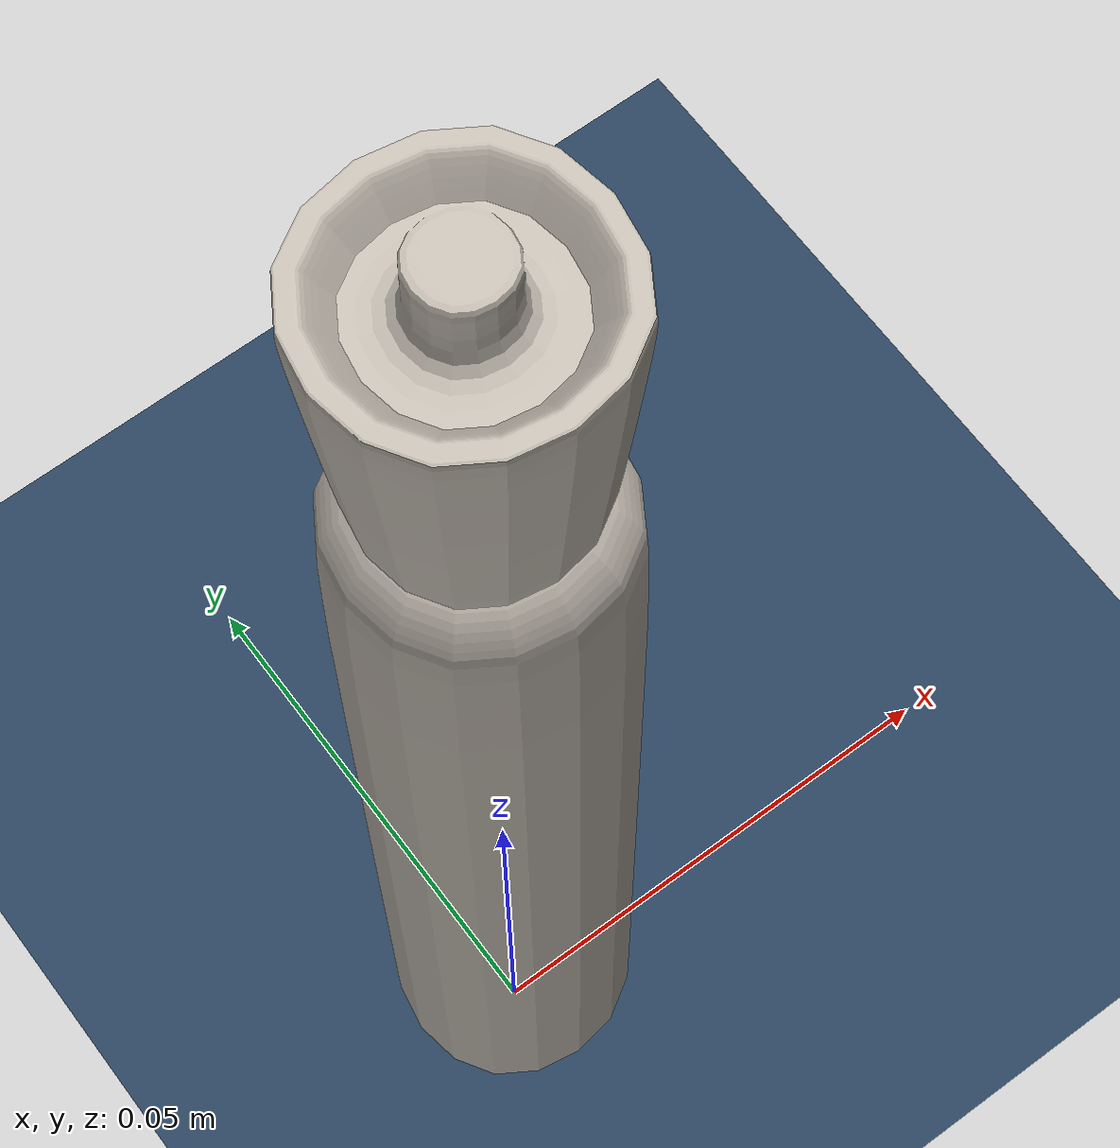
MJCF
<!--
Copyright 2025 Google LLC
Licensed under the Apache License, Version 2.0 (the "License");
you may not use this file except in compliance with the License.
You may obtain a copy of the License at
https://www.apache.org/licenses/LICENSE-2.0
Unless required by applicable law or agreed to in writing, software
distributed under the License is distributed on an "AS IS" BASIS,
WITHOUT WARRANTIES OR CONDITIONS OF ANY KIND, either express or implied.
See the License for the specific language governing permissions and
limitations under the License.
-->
<mujoco model="marker_scene">
  <include file="marker.xml"/>
  <include file="cap.xml"/>

  <option>
    <flag multiccd="enable"/>
  </option>

  <statistic center="0 0 0.1" extent="0.4" meansize="0.02"/>

  <visual>
    <headlight diffuse="0.6 0.6 0.6" ambient="0.3 0.3 0.3" specular="0 0 0"/>
    <rgba haze="0.15 0.25 0.35 1"/>
    <global azimuth="120" elevation="-10"/>
  </visual>

  <asset>
    <texture type="skybox" builtin="gradient" rgb1="0.3 0.5 0.7" rgb2="0 0 0" width="512" height="3072"/>
    <texture type="2d" name="groundplane" builtin="checker" mark="edge" rgb1="0.2 0.3 0.4" rgb2="0.1 0.2 0.3"
      markrgb="0.8 0.8 0.8" width="300" height="300"/>
    <material name="groundplane" texture="groundplane" texuniform="true" texrepeat="5 5" reflectance="0.2"/>
  </asset>

  <worldbody>
    <light pos="0 0 1.5" directional="true"/>
    <geom name="floor" size="0 0 0.05" type="plane" material="groundplane"/>
  </worldbody>
</mujoco>

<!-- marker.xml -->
<mujoco model="marker">
  <compiler assetdir="meshes" texturedir="materials"/>

  <asset>
    <texture type="2d" name="marker_texture" file="4k_textures/marker_4k_BaseColor.png"/>
    <material name="marker_texture" texture="marker_texture"/>

    <mesh file="marker.obj" scale = "1 1 1"/>
    <mesh file="marker_collision_001.obj" scale = "1 1 1"/>
    <mesh file="marker_collision_002.obj" scale = "1 1 1"/>
    <mesh file="marker_collision_003.obj" scale = "1 1 1"/>
    <mesh file="marker_collision_004.obj" scale = "1 1 1"/>
    <mesh file="marker_collision_005.obj" scale = "1 1 1"/>
    <mesh file="marker_collision_006.obj" scale = "1 1 1"/>
    <mesh file="marker_collision_007.obj" scale = "1 1 1"/>
    <mesh file="marker_collision_008.obj" scale = "1 1 1"/>
    <mesh file="marker_collision_009.obj" scale = "1 1 1"/>
    <mesh file="marker_collision_010.obj" scale = "1 1 1"/>
    <mesh file="marker_collision_011.obj" scale = "1 1 1"/>
    <mesh file="marker_collision_012.obj" scale = "1 1 1"/>
    <mesh file="marker_collision_013.obj" scale = "1 1 1"/>
    <mesh file="marker_collision_014.obj" scale = "1 1 1"/>
    <mesh file="marker_collision_015.obj" scale = "1 1 1"/>
    <mesh file="marker_collision_016.obj" scale = "1 1 1"/>
    <mesh file="marker_collision_high_friction_001.obj" scale = "1 1 1"/>
    <mesh file="marker_collision_high_friction_002.obj" scale = "1 1 1"/>
    <mesh file="marker_collision_high_friction_003.obj" scale = "1 1 1"/>
    <mesh file="marker_collision_high_friction_004.obj" scale = "1 1 1"/>
    <mesh file="marker_collision_high_friction_005.obj" scale = "1 1 1"/>
    <mesh file="marker_collision_high_friction_006.obj" scale = "1 1 1"/>
    <mesh file="marker_collision_high_friction_007.obj" scale = "1 1 1"/>
    <mesh file="marker_collision_high_friction_008.obj" scale = "1 1 1"/>
  </asset>

  <default>
    <default class="marker">
      <default class="visual_marker">
        <geom type="mesh" group="2" density="200" contype="0" conaffinity="0" material="marker_texture"/>
      </default>
      <default class="collision_marker">
        <geom type="mesh" group="3" density="0" solref=".004 1" friction="1.0 0.01 0.01" condim="6"/>
      </default>
      <default class="collision_marker_high_friction">
        <geom type="mesh" group="4" density="0" solref=".004 1" friction="0.5 0.01 0.01" solimp="0.99 0.99 0.01" condim="6"/>
      </default>
    </default>
  </default>

  <worldbody>
    <body childclass="marker" pos="0 0 0.01">
      <freejoint/>
      <geom class="visual_marker" mesh="marker" euler="0 90 90"/>
      <geom class="collision_marker" mesh="marker_collision_001" euler="0 90 90"/>
      <geom class="collision_marker" mesh="marker_collision_002" euler="0 90 90"/>
      <geom class="collision_marker" mesh="marker_collision_003" euler="0 90 90"/>
      <geom class="collision_marker" mesh="marker_collision_004" euler="0 90 90"/>
      <geom class="collision_marker" mesh="marker_collision_005" euler="0 90 90"/>
      <geom class="collision_marker" mesh="marker_collision_006" euler="0 90 90"/>
      <geom class="collision_marker" mesh="marker_collision_007" euler="0 90 90"/>
      <geom class="collision_marker" mesh="marker_collision_008" euler="0 90 90"/>
      <geom class="collision_marker" mesh="marker_collision_009" euler="0 90 90"/>
      <geom class="collision_marker" mesh="marker_collision_010" euler="0 90 90"/>
      <geom class="collision_marker" mesh="marker_collision_011" euler="0 90 90"/>
      <geom class="collision_marker" mesh="marker_collision_012" euler="0 90 90"/>
      <geom class="collision_marker" mesh="marker_collision_013" euler="0 90 90"/>
      <geom class="collision_marker" mesh="marker_collision_014" euler="0 90 90"/>
      <geom class="collision_marker" mesh="marker_collision_015" euler="0 90 90"/>
      <geom class="collision_marker" mesh="marker_collision_016" euler="0 90 90"/>
      <geom class="collision_marker_high_friction" mesh="marker_collision_high_friction_001" euler="0 90 90"/>
      <geom class="collision_marker_high_friction" mesh="marker_collision_high_friction_002" euler="0 90 90"/>
      <geom class="collision_marker_high_friction" mesh="marker_collision_high_friction_003" euler="0 90 90"/>
      <geom class="collision_marker_high_friction" mesh="marker_collision_high_friction_004" euler="0 90 90"/>
      <geom class="collision_marker_high_friction" mesh="marker_collision_high_friction_005" euler="0 90 90"/>
      <geom class="collision_marker_high_friction" mesh="marker_collision_high_friction_006" euler="0 90 90"/>
      <geom class="collision_marker_high_friction" mesh="marker_collision_high_friction_007" euler="0 90 90"/>
      <geom class="collision_marker_high_friction" mesh="marker_collision_high_friction_008" euler="0 90 90"/>
    </body>
  </worldbody>
</mujoco>

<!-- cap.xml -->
<mujoco model="cap">
  <compiler assetdir="meshes" texturedir="materials"/>

  <asset>
    <texture type="2d" name="cap_texture" file="4k_textures/marker_4k_BaseColor.png"/>
    <material name="cap_texture" texture="cap_texture"/>

    <mesh file="cap.obj" scale = "1 1 1"/>
    <mesh file="cap_collision_001.obj" scale = "1 1 1"/>
    <mesh file="cap_collision_002.obj" scale = "1 1 1"/>
    <mesh file="cap_collision_003.obj" scale = "1 1 1"/>
    <mesh file="cap_collision_004.obj" scale = "1 1 1"/>
    <mesh file="cap_collision_005.obj" scale = "1 1 1"/>
    <mesh file="cap_collision_006.obj" scale = "1 1 1"/>
    <mesh file="cap_collision_007.obj" scale = "1 1 1"/>
    <mesh file="cap_collision_008.obj" scale = "1 1 1"/>
    <mesh file="cap_collision_009.obj" scale = "1 1 1"/>
    <mesh file="cap_collision_high_friction_001.obj" scale = "1 1 1"/>
    <mesh file="cap_collision_high_friction_002.obj" scale = "1 1 1"/>
    <mesh file="cap_collision_high_friction_003.obj" scale = "1 1 1"/>
    <mesh file="cap_collision_high_friction_004.obj" scale = "1 1 1"/>
    <mesh file="cap_collision_high_friction_005.obj" scale = "1 1 1"/>
    <mesh file="cap_collision_high_friction_006.obj" scale = "1 1 1"/>
    <mesh file="cap_collision_high_friction_007.obj" scale = "1 1 1"/>
    <mesh file="cap_collision_high_friction_008.obj" scale = "1 1 1"/>
    <mesh file="cap_collision_high_friction_009.obj" scale = "1 1 1"/>
    <mesh file="cap_collision_high_friction_010.obj" scale = "1 1 1"/>
    <mesh file="cap_collision_high_friction_011.obj" scale = "1 1 1"/>
    <mesh file="cap_collision_high_friction_012.obj" scale = "1 1 1"/>
    <mesh file="cap_collision_high_friction_013.obj" scale = "1 1 1"/>
    <mesh file="cap_collision_high_friction_014.obj" scale = "1 1 1"/>
    <mesh file="cap_collision_high_friction_015.obj" scale = "1 1 1"/>
    <mesh file="cap_collision_high_friction_016.obj" scale = "1 1 1"/>

  </asset>

  <default>
    <default class="cap">
      <default class="visual_cap">
        <geom type="mesh" group="2" density="200" contype="0" conaffinity="0" material="cap_texture"/>
      </default>
      <default class="collision_cap_external">
        <geom type="mesh" group="3" density="0" solref=".004 1" friction="1.0 0.01 0.01" condim="6"/>
      </default>
      <default class="collision_cap_high_friction">
        <geom type="mesh" group="4" density="0" solref=".004 1" friction="0.5 0.01 0.01" condim="6" solimp="0.99 0.99 0.01"/>
      </default>
    </default>
  </default>

  <worldbody>
    <body childclass="cap" pos="0 0 0.01">
      <freejoint/>
      <geom class="visual_cap" mesh="cap" euler="0 90 90"/>
      <geom class="collision_cap_external" mesh="cap_collision_001" euler="0 90 90"/>
      <geom class="collision_cap_external" mesh="cap_collision_002" euler="0 90 90"/>
      <geom class="collision_cap_external" mesh="cap_collision_003" euler="0 90 90"/>
      <geom class="collision_cap_external" mesh="cap_collision_004" euler="0 90 90"/>
      <geom class="collision_cap_external" mesh="cap_collision_005" euler="0 90 90"/>
      <geom class="collision_cap_external" mesh="cap_collision_006" euler="0 90 90"/>
      <geom class="collision_cap_external" mesh="cap_collision_007" euler="0 90 90"/>
      <geom class="collision_cap_external" mesh="cap_collision_008" euler="0 90 90"/>
      <geom class="collision_cap_external" mesh="cap_collision_009" euler="0 90 90"/>
      <geom class="collision_cap_high_friction" mesh="cap_collision_high_friction_001" euler="0 90 90"/>
      <geom class="collision_cap_high_friction" mesh="cap_collision_high_friction_002" euler="0 90 90"/>
      <geom class="collision_cap_high_friction" mesh="cap_collision_high_friction_003" euler="0 90 90"/>
      <geom class="collision_cap_high_friction" mesh="cap_collision_high_friction_004" euler="0 90 90"/>
      <geom class="collision_cap_high_friction" mesh="cap_collision_high_friction_005" euler="0 90 90"/>
      <geom class="collision_cap_high_friction" mesh="cap_collision_high_friction_006" euler="0 90 90"/>
      <geom class="collision_cap_high_friction" mesh="cap_collision_high_friction_007" euler="0 90 90"/>
      <geom class="collision_cap_high_friction" mesh="cap_collision_high_friction_008" euler="0 90 90"/>
      <geom class="collision_cap_high_friction" mesh="cap_collision_high_friction_009" euler="0 90 90"/>
      <geom class="collision_cap_high_friction" mesh="cap_collision_high_friction_010" euler="0 90 90"/>
      <geom class="collision_cap_high_friction" mesh="cap_collision_high_friction_011" euler="0 90 90"/>
      <geom class="collision_cap_high_friction" mesh="cap_collision_high_friction_012" euler="0 90 90"/>
      <geom class="collision_cap_high_friction" mesh="cap_collision_high_friction_013" euler="0 90 90"/>
      <geom class="collision_cap_high_friction" mesh="cap_collision_high_friction_014" euler="0 90 90"/>
      <geom class="collision_cap_high_friction" mesh="cap_collision_high_friction_015" euler="0 90 90"/>
      <geom class="collision_cap_high_friction" mesh="cap_collision_high_friction_016" euler="0 90 90"/>
    </body>
  </worldbody>
</mujoco>
